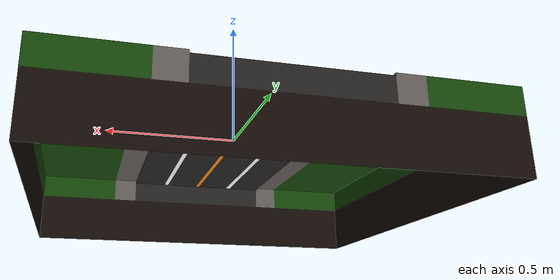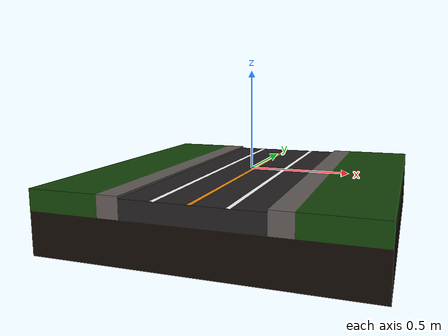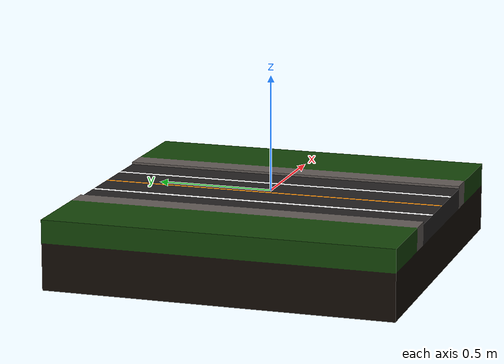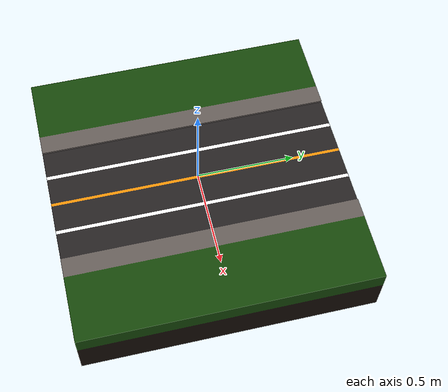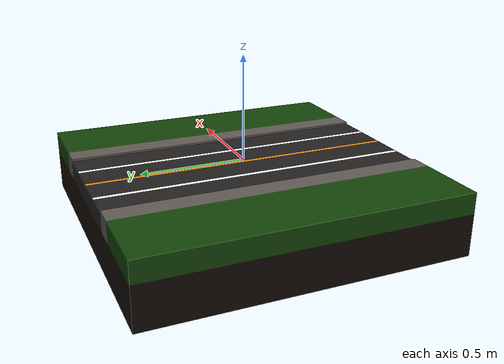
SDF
<?xml version='1.0'?>
<sdf version='1.4'>
  <model name="road straight">
    <static>true</static>
    <pose>0 0 0 0 0 0</pose>

    <link name="road straight">
      <visual name="panel">
        <geometry>
          <mesh>
            <uri>model://road_straight/road_straight.dae</uri>
            <scale>0.05 0.05 0.05</scale>
          </mesh>
        </geometry>
      </visual>
      <collision name="panel_collision">
        <geometry>
          <mesh>
            <uri>model://road_straight/road_straight.dae</uri>
            <scale>1 1 1</scale>
          </mesh>
        </geometry>
      </collision>
    </link>

  </model>
</sdf>
